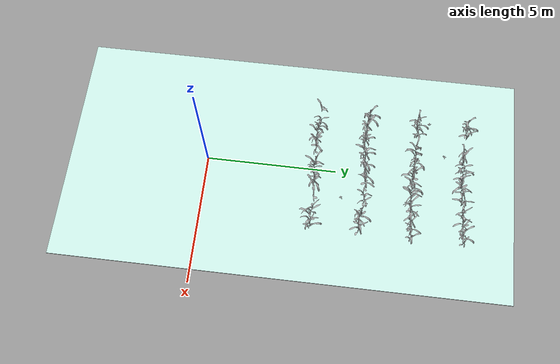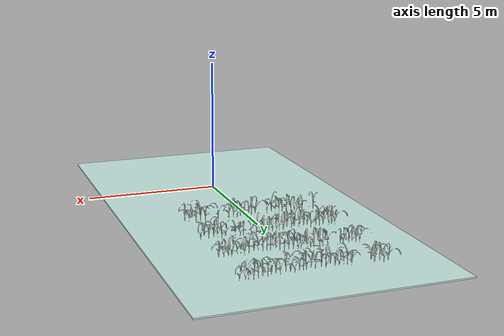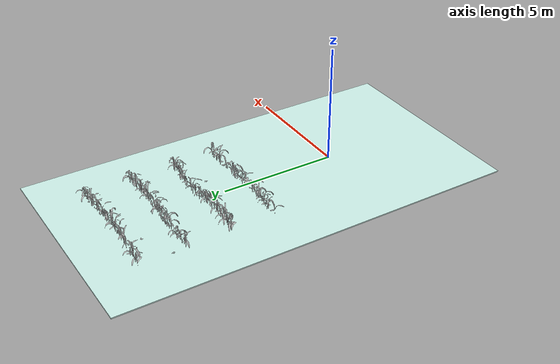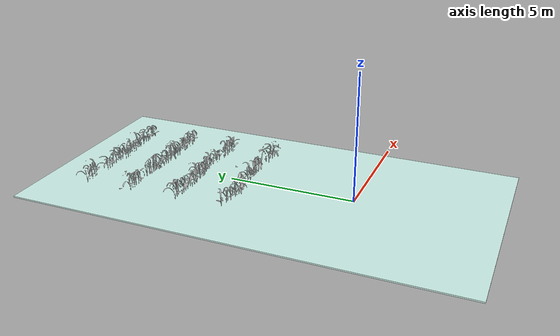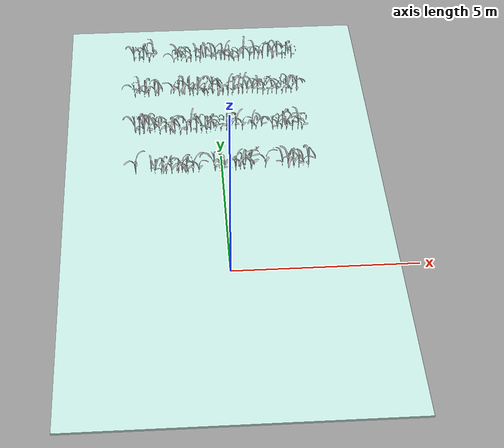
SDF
<sdf version="1.9">
 <world name="feild">
  <model name="ground">
   <static>true</static>
   <pose>0.00 3.25 -0.025 0 0 0</pose>
   <link name="link">
    <collision name="collision">
     <geometry><box><size>9.00 17.30 0.05</size></box></geometry>
     <surface><friction><ode><mu>1.0</mu><mu2>1.0</mu2></ode></friction></surface>
    </collision>
    <visual name="visual">
     <geometry><box><size>9.00 17.30 0.05</size></box></geometry>
     <material>
      <diffuse>0.81 0.95 0.92 1</diffuse>
      <pbr>
       <metal>
        <albedo_map>model://materials/textures/grass_color.jpg</albedo_map>
        <normal_map>model://materials/textures/grass_normal.jpg</normal_map>
       </metal>
      </pbr>
     </material>
    </visual>
   </link>
  </model>
  <model name="row_05">
   <static>true</static>
   <pose>0 4.200 0 0 0 0</pose>
   <link name="link">
    <visual name="p000">
     <pose>-2.484 0.012 0.056 0 0 5.96</pose>
     <geometry>
      <mesh><uri>model://maize_02/meshes/maize_02.dae</uri><scale>0.7661 0.7661 0.7661</scale></mesh>
     </geometry>
    </visual>
    <collision name="p000_c">
     <pose>-2.484 0.012 0.280 0 0 0</pose>
     <geometry><box><size>0.022 0.022 0.449</size></box></geometry>
    </collision>
    <visual name="p003">
     <pose>-2.033 0.031 0.045 0 0 3.90</pose>
     <geometry>
      <mesh><uri>model://maize_02/meshes/maize_02.dae</uri><scale>0.6151 0.6151 0.6151</scale></mesh>
     </geometry>
    </visual>
    <collision name="p003_c">
     <pose>-2.033 0.031 0.225 0 0 0</pose>
     <geometry><box><size>0.018 0.018 0.360</size></box></geometry>
    </collision>
    <visual name="p004">
     <pose>-1.923 0.023 0.042 0 0 1.71</pose>
     <geometry>
      <mesh><uri>model://maize_01/meshes/maize_01.dae</uri><scale>0.5785 0.5785 0.5785</scale></mesh>
     </geometry>
    </visual>
    <collision name="p004_c">
     <pose>-1.923 0.023 0.212 0 0 0</pose>
     <geometry><box><size>0.017 0.017 0.339</size></box></geometry>
    </collision>
    <visual name="p005">
     <pose>-1.738 -0.014 0.046 0 0 1.94</pose>
     <geometry>
      <mesh><uri>model://maize_01/meshes/maize_01.dae</uri><scale>0.6279 0.6279 0.6279</scale></mesh>
     </geometry>
    </visual>
    <collision name="p005_c">
     <pose>-1.738 -0.014 0.230 0 0 0</pose>
     <geometry><box><size>0.018 0.018 0.368</size></box></geometry>
    </collision>
    <visual name="p006">
     <pose>-1.613 -0.032 0.043 0 0 2.94</pose>
     <geometry>
      <mesh><uri>model://maize_02/meshes/maize_02.dae</uri><scale>0.5895 0.5895 0.5895</scale></mesh>
     </geometry>
    </visual>
    <collision name="p006_c">
     <pose>-1.613 -0.032 0.216 0 0 0</pose>
     <geometry><box><size>0.017 0.017 0.345</size></box></geometry>
    </collision>
    <visual name="p007">
     <pose>-1.455 -0.056 0.053 0 0 4.92</pose>
     <geometry>
      <mesh><uri>model://maize_01/meshes/maize_01.dae</uri><scale>0.7267 0.7267 0.7267</scale></mesh>
     </geometry>
    </visual>
    <collision name="p007_c">
     <pose>-1.455 -0.056 0.266 0 0 0</pose>
     <geometry><box><size>0.021 0.021 0.425</size></box></geometry>
    </collision>
    <visual name="p008">
     <pose>-1.273 -0.042 0.046 0 0 6.12</pose>
     <geometry>
      <mesh><uri>model://maize_01/meshes/maize_01.dae</uri><scale>0.6235 0.6235 0.6235</scale></mesh>
     </geometry>
    </visual>
    <collision name="p008_c">
     <pose>-1.273 -0.042 0.228 0 0 0</pose>
     <geometry><box><size>0.018 0.018 0.365</size></box></geometry>
    </collision>
    <visual name="p009">
     <pose>-1.156 -0.062 0.048 0 0 4.69</pose>
     <geometry>
      <mesh><uri>model://maize_02/meshes/maize_02.dae</uri><scale>0.6622 0.6622 0.6622</scale></mesh>
     </geometry>
    </visual>
    <collision name="p009_c">
     <pose>-1.156 -0.062 0.242 0 0 0</pose>
     <geometry><box><size>0.019 0.019 0.388</size></box></geometry>
    </collision>
    <visual name="p010">
     <pose>-1.007 -0.058 0.049 0 0 4.62</pose>
     <geometry>
      <mesh><uri>model://maize_01/meshes/maize_01.dae</uri><scale>0.6758 0.6758 0.6758</scale></mesh>
     </geometry>
    </visual>
    <collision name="p010_c">
     <pose>-1.007 -0.058 0.247 0 0 0</pose>
     <geometry><box><size>0.020 0.020 0.396</size></box></geometry>
    </collision>
    <visual name="p011">
     <pose>-0.848 -0.044 0.060 0 0 2.79</pose>
     <geometry>
      <mesh><uri>model://maize_02/meshes/maize_02.dae</uri><scale>0.8182 0.8182 0.8182</scale></mesh>
     </geometry>
    </visual>
    <collision name="p011_c">
     <pose>-0.848 -0.044 0.299 0 0 0</pose>
     <geometry><box><size>0.024 0.024 0.479</size></box></geometry>
    </collision>
    <visual name="p012">
     <pose>-0.685 -0.061 0.041 0 0 5.07</pose>
     <geometry>
      <mesh><uri>model://maize_02/meshes/maize_02.dae</uri><scale>0.5629 0.5629 0.5629</scale></mesh>
     </geometry>
    </visual>
    <collision name="p012_c">
     <pose>-0.685 -0.061 0.206 0 0 0</pose>
     <geometry><box><size>0.016 0.016 0.330</size></box></geometry>
    </collision>
    <visual name="p015">
     <pose>-0.223 -0.020 0.058 0 0 3.42</pose>
     <geometry>
      <mesh><uri>model://maize_01/meshes/maize_01.dae</uri><scale>0.7902 0.7902 0.7902</scale></mesh>
     </geometry>
    </visual>
    <collision name="p015_c">
     <pose>-0.223 -0.020 0.289 0 0 0</pose>
     <geometry><box><size>0.023 0.023 0.463</size></box></geometry>
    </collision>
    <visual name="p016">
     <pose>-0.080 -0.044 0.060 0 0 0.14</pose>
     <geometry>
      <mesh><uri>model://maize_02/meshes/maize_02.dae</uri><scale>0.8189 0.8189 0.8189</scale></mesh>
     </geometry>
    </visual>
    <collision name="p016_c">
     <pose>-0.080 -0.044 0.300 0 0 0</pose>
     <geometry><box><size>0.024 0.024 0.479</size></box></geometry>
    </collision>
    <visual name="p017">
     <pose>0.035 -0.026 0.043 0 0 3.81</pose>
     <geometry>
      <mesh><uri>model://maize_02/meshes/maize_02.dae</uri><scale>0.5828 0.5828 0.5828</scale></mesh>
     </geometry>
    </visual>
    <collision name="p017_c">
     <pose>0.035 -0.026 0.213 0 0 0</pose>
     <geometry><box><size>0.017 0.017 0.341</size></box></geometry>
    </collision>
    <visual name="p018">
     <pose>0.209 -0.021 0.042 0 0 3.10</pose>
     <geometry>
      <mesh><uri>model://maize_02/meshes/maize_02.dae</uri><scale>0.5695 0.5695 0.5695</scale></mesh>
     </geometry>
    </visual>
    <collision name="p018_c">
     <pose>0.209 -0.021 0.208 0 0 0</pose>
     <geometry><box><size>0.017 0.017 0.333</size></box></geometry>
    </collision>
    <visual name="p019">
     <pose>0.368 0.008 0.051 0 0 6.10</pose>
     <geometry>
      <mesh><uri>model://maize_02/meshes/maize_02.dae</uri><scale>0.6972 0.6972 0.6972</scale></mesh>
     </geometry>
    </visual>
    <collision name="p019_c">
     <pose>0.368 0.008 0.255 0 0 0</pose>
     <geometry><box><size>0.020 0.020 0.408</size></box></geometry>
    </collision>
    <visual name="p020">
     <pose>0.504 0.033 0.051 0 0 0.34</pose>
     <geometry>
      <mesh><uri>model://maize_01/meshes/maize_01.dae</uri><scale>0.7002 0.7002 0.7002</scale></mesh>
     </geometry>
    </visual>
    <collision name="p020_c">
     <pose>0.504 0.033 0.256 0 0 0</pose>
     <geometry><box><size>0.020 0.020 0.410</size></box></geometry>
    </collision>
    <visual name="p021">
     <pose>0.626 0.015 0.060 0 0 1.27</pose>
     <geometry>
      <mesh><uri>model://maize_01/meshes/maize_01.dae</uri><scale>0.8197 0.8197 0.8197</scale></mesh>
     </geometry>
    </visual>
    <collision name="p021_c">
     <pose>0.626 0.015 0.300 0 0 0</pose>
     <geometry><box><size>0.024 0.024 0.480</size></box></geometry>
    </collision>
    <visual name="p022">
     <pose>0.805 0.010 0.057 0 0 4.59</pose>
     <geometry>
      <mesh><uri>model://maize_01/meshes/maize_01.dae</uri><scale>0.7790 0.7790 0.7790</scale></mesh>
     </geometry>
    </visual>
    <collision name="p022_c">
     <pose>0.805 0.010 0.285 0 0 0</pose>
     <geometry><box><size>0.023 0.023 0.456</size></box></geometry>
    </collision>
    <visual name="p025">
     <pose>1.222 0.055 0.053 0 0 5.39</pose>
     <geometry>
      <mesh><uri>model://maize_02/meshes/maize_02.dae</uri><scale>0.7183 0.7183 0.7183</scale></mesh>
     </geometry>
    </visual>
    <collision name="p025_c">
     <pose>1.222 0.055 0.263 0 0 0</pose>
     <geometry><box><size>0.021 0.021 0.421</size></box></geometry>
    </collision>
    <visual name="p028">
     <pose>1.701 0.054 0.050 0 0 1.36</pose>
     <geometry>
      <mesh><uri>model://maize_02/meshes/maize_02.dae</uri><scale>0.6882 0.6882 0.6882</scale></mesh>
     </geometry>
    </visual>
    <collision name="p028_c">
     <pose>1.701 0.054 0.252 0 0 0</pose>
     <geometry><box><size>0.020 0.020 0.403</size></box></geometry>
    </collision>
    <visual name="p029">
     <pose>1.871 0.007 0.060 0 0 4.33</pose>
     <geometry>
      <mesh><uri>model://maize_02/meshes/maize_02.dae</uri><scale>0.8161 0.8161 0.8161</scale></mesh>
     </geometry>
    </visual>
    <collision name="p029_c">
     <pose>1.871 0.007 0.299 0 0 0</pose>
     <geometry><box><size>0.024 0.024 0.478</size></box></geometry>
    </collision>
    <visual name="p030">
     <pose>2.024 0.023 0.057 0 0 5.10</pose>
     <geometry>
      <mesh><uri>model://maize_01/meshes/maize_01.dae</uri><scale>0.7765 0.7765 0.7765</scale></mesh>
     </geometry>
    </visual>
    <collision name="p030_c">
     <pose>2.024 0.023 0.284 0 0 0</pose>
     <geometry><box><size>0.023 0.023 0.455</size></box></geometry>
    </collision>
    <visual name="p031">
     <pose>2.177 -0.016 0.050 0 0 3.85</pose>
     <geometry>
      <mesh><uri>model://maize_02/meshes/maize_02.dae</uri><scale>0.6829 0.6829 0.6829</scale></mesh>
     </geometry>
    </visual>
    <collision name="p031_c">
     <pose>2.177 -0.016 0.250 0 0 0</pose>
     <geometry><box><size>0.020 0.020 0.400</size></box></geometry>
    </collision>
    <visual name="p032">
     <pose>2.301 0.029 0.048 0 0 1.72</pose>
     <geometry>
      <mesh><uri>model://maize_02/meshes/maize_02.dae</uri><scale>0.6626 0.6626 0.6626</scale></mesh>
     </geometry>
    </visual>
    <collision name="p032_c">
     <pose>2.301 0.029 0.242 0 0 0</pose>
     <geometry><box><size>0.019 0.019 0.388</size></box></geometry>
    </collision>
    <visual name="p033">
     <pose>2.457 0.011 0.058 0 0 2.56</pose>
     <geometry>
      <mesh><uri>model://maize_01/meshes/maize_01.dae</uri><scale>0.7975 0.7975 0.7975</scale></mesh>
     </geometry>
    </visual>
    <collision name="p033_c">
     <pose>2.457 0.011 0.292 0 0 0</pose>
     <geometry><box><size>0.023 0.023 0.467</size></box></geometry>
    </collision>
   </link>
  </model>
  <model name="row_06">
   <static>true</static>
   <pose>0 6.100 0 0 0 0</pose>
   <link name="link">
    <visual name="p000">
     <pose>-2.481 0.018 0.054 0 0 3.24</pose>
     <geometry>
      <mesh><uri>model://maize_01/meshes/maize_01.dae</uri><scale>0.7440 0.7440 0.7440</scale></mesh>
     </geometry>
    </visual>
    <collision name="p000_c">
     <pose>-2.481 0.018 0.272 0 0 0</pose>
     <geometry><box><size>0.022 0.022 0.436</size></box></geometry>
    </collision>
    <visual name="p001">
     <pose>-2.354 -0.004 0.056 0 0 2.18</pose>
     <geometry>
      <mesh><uri>model://maize_01/meshes/maize_01.dae</uri><scale>0.7670 0.7670 0.7670</scale></mesh>
     </geometry>
    </visual>
    <collision name="p001_c">
     <pose>-2.354 -0.004 0.281 0 0 0</pose>
     <geometry><box><size>0.022 0.022 0.449</size></box></geometry>
    </collision>
    <visual name="p002">
     <pose>-2.227 0.010 0.059 0 0 1.65</pose>
     <geometry>
      <mesh><uri>model://maize_01/meshes/maize_01.dae</uri><scale>0.8000 0.8000 0.8000</scale></mesh>
     </geometry>
    </visual>
    <collision name="p002_c">
     <pose>-2.227 0.010 0.293 0 0 0</pose>
     <geometry><box><size>0.023 0.023 0.468</size></box></geometry>
    </collision>
    <visual name="p003">
     <pose>-2.052 -0.035 0.057 0 0 3.18</pose>
     <geometry>
      <mesh><uri>model://maize_01/meshes/maize_01.dae</uri><scale>0.7826 0.7826 0.7826</scale></mesh>
     </geometry>
    </visual>
    <collision name="p003_c">
     <pose>-2.052 -0.035 0.286 0 0 0</pose>
     <geometry><box><size>0.023 0.023 0.458</size></box></geometry>
    </collision>
    <visual name="p004">
     <pose>-1.908 -0.029 0.060 0 0 4.72</pose>
     <geometry>
      <mesh><uri>model://maize_02/meshes/maize_02.dae</uri><scale>0.8132 0.8132 0.8132</scale></mesh>
     </geometry>
    </visual>
    <collision name="p004_c">
     <pose>-1.908 -0.029 0.298 0 0 0</pose>
     <geometry><box><size>0.024 0.024 0.476</size></box></geometry>
    </collision>
    <visual name="p005">
     <pose>-1.763 -0.024 0.050 0 0 4.42</pose>
     <geometry>
      <mesh><uri>model://maize_01/meshes/maize_01.dae</uri><scale>0.6798 0.6798 0.6798</scale></mesh>
     </geometry>
    </visual>
    <collision name="p005_c">
     <pose>-1.763 -0.024 0.249 0 0 0</pose>
     <geometry><box><size>0.020 0.020 0.398</size></box></geometry>
    </collision>
    <visual name="p006">
     <pose>-1.583 -0.033 0.042 0 0 6.17</pose>
     <geometry>
      <mesh><uri>model://maize_01/meshes/maize_01.dae</uri><scale>0.5717 0.5717 0.5717</scale></mesh>
     </geometry>
    </visual>
    <collision name="p006_c">
     <pose>-1.583 -0.033 0.209 0 0 0</pose>
     <geometry><box><size>0.017 0.017 0.335</size></box></geometry>
    </collision>
    <visual name="p007">
     <pose>-1.458 -0.073 0.053 0 0 5.63</pose>
     <geometry>
      <mesh><uri>model://maize_02/meshes/maize_02.dae</uri><scale>0.7231 0.7231 0.7231</scale></mesh>
     </geometry>
    </visual>
    <collision name="p007_c">
     <pose>-1.458 -0.073 0.265 0 0 0</pose>
     <geometry><box><size>0.021 0.021 0.423</size></box></geometry>
    </collision>
    <visual name="p008">
     <pose>-1.317 -0.066 0.048 0 0 2.65</pose>
     <geometry>
      <mesh><uri>model://maize_01/meshes/maize_01.dae</uri><scale>0.6567 0.6567 0.6567</scale></mesh>
     </geometry>
    </visual>
    <collision name="p008_c">
     <pose>-1.317 -0.066 0.240 0 0 0</pose>
     <geometry><box><size>0.019 0.019 0.384</size></box></geometry>
    </collision>
    <visual name="p009">
     <pose>-1.171 -0.085 0.054 0 0 4.12</pose>
     <geometry>
      <mesh><uri>model://maize_01/meshes/maize_01.dae</uri><scale>0.7328 0.7328 0.7328</scale></mesh>
     </geometry>
    </visual>
    <collision name="p009_c">
     <pose>-1.171 -0.085 0.268 0 0 0</pose>
     <geometry><box><size>0.021 0.021 0.429</size></box></geometry>
    </collision>
    <visual name="p010">
     <pose>-0.970 -0.088 0.058 0 0 2.50</pose>
     <geometry>
      <mesh><uri>model://maize_02/meshes/maize_02.dae</uri><scale>0.7942 0.7942 0.7942</scale></mesh>
     </geometry>
    </visual>
    <collision name="p010_c">
     <pose>-0.970 -0.088 0.291 0 0 0</pose>
     <geometry><box><size>0.023 0.023 0.465</size></box></geometry>
    </collision>
    <visual name="p011">
     <pose>-0.849 -0.044 0.059 0 0 0.32</pose>
     <geometry>
      <mesh><uri>model://maize_02/meshes/maize_02.dae</uri><scale>0.8077 0.8077 0.8077</scale></mesh>
     </geometry>
    </visual>
    <collision name="p011_c">
     <pose>-0.849 -0.044 0.296 0 0 0</pose>
     <geometry><box><size>0.024 0.024 0.473</size></box></geometry>
    </collision>
    <visual name="p012">
     <pose>-0.679 -0.066 0.054 0 0 2.45</pose>
     <geometry>
      <mesh><uri>model://maize_01/meshes/maize_01.dae</uri><scale>0.7365 0.7365 0.7365</scale></mesh>
     </geometry>
    </visual>
    <collision name="p012_c">
     <pose>-0.679 -0.066 0.270 0 0 0</pose>
     <geometry><box><size>0.022 0.022 0.431</size></box></geometry>
    </collision>
    <visual name="p013">
     <pose>-0.545 -0.010 0.055 0 0 4.04</pose>
     <geometry>
      <mesh><uri>model://maize_01/meshes/maize_01.dae</uri><scale>0.7465 0.7465 0.7465</scale></mesh>
     </geometry>
    </visual>
    <collision name="p013_c">
     <pose>-0.545 -0.010 0.273 0 0 0</pose>
     <geometry><box><size>0.022 0.022 0.437</size></box></geometry>
    </collision>
    <visual name="p014">
     <pose>-0.379 -0.043 0.053 0 0 1.35</pose>
     <geometry>
      <mesh><uri>model://maize_01/meshes/maize_01.dae</uri><scale>0.7187 0.7187 0.7187</scale></mesh>
     </geometry>
    </visual>
    <collision name="p014_c">
     <pose>-0.379 -0.043 0.263 0 0 0</pose>
     <geometry><box><size>0.021 0.021 0.421</size></box></geometry>
    </collision>
    <visual name="p015">
     <pose>-0.267 -0.015 0.050 0 0 2.13</pose>
     <geometry>
      <mesh><uri>model://maize_01/meshes/maize_01.dae</uri><scale>0.6831 0.6831 0.6831</scale></mesh>
     </geometry>
    </visual>
    <collision name="p015_c">
     <pose>-0.267 -0.015 0.250 0 0 0</pose>
     <geometry><box><size>0.020 0.020 0.400</size></box></geometry>
    </collision>
    <visual name="p016">
     <pose>-0.122 0.019 0.041 0 0 5.10</pose>
     <geometry>
      <mesh><uri>model://maize_02/meshes/maize_02.dae</uri><scale>0.5547 0.5547 0.5547</scale></mesh>
     </geometry>
    </visual>
    <collision name="p016_c">
     <pose>-0.122 0.019 0.203 0 0 0</pose>
     <geometry><box><size>0.016 0.016 0.325</size></box></geometry>
    </collision>
    <visual name="p017">
     <pose>0.031 0.042 0.049 0 0 4.15</pose>
     <geometry>
      <mesh><uri>model://maize_01/meshes/maize_01.dae</uri><scale>0.6627 0.6627 0.6627</scale></mesh>
     </geometry>
    </visual>
    <collision name="p017_c">
     <pose>0.031 0.042 0.243 0 0 0</pose>
     <geometry><box><size>0.019 0.019 0.388</size></box></geometry>
    </collision>
    <visual name="p018">
     <pose>0.216 0.061 0.052 0 0 1.62</pose>
     <geometry>
      <mesh><uri>model://maize_01/meshes/maize_01.dae</uri><scale>0.7080 0.7080 0.7080</scale></mesh>
     </geometry>
    </visual>
    <collision name="p018_c">
     <pose>0.216 0.061 0.259 0 0 0</pose>
     <geometry><box><size>0.021 0.021 0.415</size></box></geometry>
    </collision>
    <visual name="p019">
     <pose>0.331 0.048 0.041 0 0 0.99</pose>
     <geometry>
      <mesh><uri>model://maize_01/meshes/maize_01.dae</uri><scale>0.5543 0.5543 0.5543</scale></mesh>
     </geometry>
    </visual>
    <collision name="p019_c">
     <pose>0.331 0.048 0.203 0 0 0</pose>
     <geometry><box><size>0.016 0.016 0.325</size></box></geometry>
    </collision>
    <visual name="p020">
     <pose>0.487 0.091 0.056 0 0 3.15</pose>
     <geometry>
      <mesh><uri>model://maize_02/meshes/maize_02.dae</uri><scale>0.7709 0.7709 0.7709</scale></mesh>
     </geometry>
    </visual>
    <collision name="p020_c">
     <pose>0.487 0.091 0.282 0 0 0</pose>
     <geometry><box><size>0.023 0.023 0.451</size></box></geometry>
    </collision>
    <visual name="p021">
     <pose>0.674 0.056 0.042 0 0 5.09</pose>
     <geometry>
      <mesh><uri>model://maize_02/meshes/maize_02.dae</uri><scale>0.5768 0.5768 0.5768</scale></mesh>
     </geometry>
    </visual>
    <collision name="p021_c">
     <pose>0.674 0.056 0.211 0 0 0</pose>
     <geometry><box><size>0.017 0.017 0.338</size></box></geometry>
    </collision>
    <visual name="p023">
     <pose>0.961 0.063 0.046 0 0 0.17</pose>
     <geometry>
      <mesh><uri>model://maize_02/meshes/maize_02.dae</uri><scale>0.6318 0.6318 0.6318</scale></mesh>
     </geometry>
    </visual>
    <collision name="p023_c">
     <pose>0.961 0.063 0.231 0 0 0</pose>
     <geometry><box><size>0.018 0.018 0.370</size></box></geometry>
    </collision>
    <visual name="p024">
     <pose>1.085 0.064 0.043 0 0 1.07</pose>
     <geometry>
      <mesh><uri>model://maize_01/meshes/maize_01.dae</uri><scale>0.5897 0.5897 0.5897</scale></mesh>
     </geometry>
    </visual>
    <collision name="p024_c">
     <pose>1.085 0.064 0.216 0 0 0</pose>
     <geometry><box><size>0.017 0.017 0.345</size></box></geometry>
    </collision>
    <visual name="p025">
     <pose>1.248 0.060 0.046 0 0 4.33</pose>
     <geometry>
      <mesh><uri>model://maize_02/meshes/maize_02.dae</uri><scale>0.6249 0.6249 0.6249</scale></mesh>
     </geometry>
    </visual>
    <collision name="p025_c">
     <pose>1.248 0.060 0.229 0 0 0</pose>
     <geometry><box><size>0.018 0.018 0.366</size></box></geometry>
    </collision>
    <visual name="p027">
     <pose>1.575 0.007 0.042 0 0 3.30</pose>
     <geometry>
      <mesh><uri>model://maize_01/meshes/maize_01.dae</uri><scale>0.5801 0.5801 0.5801</scale></mesh>
     </geometry>
    </visual>
    <collision name="p027_c">
     <pose>1.575 0.007 0.212 0 0 0</pose>
     <geometry><box><size>0.017 0.017 0.340</size></box></geometry>
    </collision>
    <visual name="p028">
     <pose>1.719 0.021 0.048 0 0 0.30</pose>
     <geometry>
      <mesh><uri>model://maize_01/meshes/maize_01.dae</uri><scale>0.6528 0.6528 0.6528</scale></mesh>
     </geometry>
    </visual>
    <collision name="p028_c">
     <pose>1.719 0.021 0.239 0 0 0</pose>
     <geometry><box><size>0.019 0.019 0.382</size></box></geometry>
    </collision>
    <visual name="p029">
     <pose>1.848 -0.037 0.058 0 0 1.91</pose>
     <geometry>
      <mesh><uri>model://maize_01/meshes/maize_01.dae</uri><scale>0.7863 0.7863 0.7863</scale></mesh>
     </geometry>
    </visual>
    <collision name="p029_c">
     <pose>1.848 -0.037 0.288 0 0 0</pose>
     <geometry><box><size>0.023 0.023 0.460</size></box></geometry>
    </collision>
    <visual name="p030">
     <pose>1.981 -0.048 0.053 0 0 2.77</pose>
     <geometry>
      <mesh><uri>model://maize_02/meshes/maize_02.dae</uri><scale>0.7260 0.7260 0.7260</scale></mesh>
     </geometry>
    </visual>
    <collision name="p030_c">
     <pose>1.981 -0.048 0.266 0 0 0</pose>
     <geometry><box><size>0.021 0.021 0.425</size></box></geometry>
    </collision>
    <visual name="p031">
     <pose>2.151 -0.061 0.058 0 0 2.46</pose>
     <geometry>
      <mesh><uri>model://maize_02/meshes/maize_02.dae</uri><scale>0.7909 0.7909 0.7909</scale></mesh>
     </geometry>
    </visual>
    <collision name="p031_c">
     <pose>2.151 -0.061 0.289 0 0 0</pose>
     <geometry><box><size>0.023 0.023 0.463</size></box></geometry>
    </collision>
    <visual name="p032">
     <pose>2.318 -0.039 0.055 0 0 1.06</pose>
     <geometry>
      <mesh><uri>model://maize_02/meshes/maize_02.dae</uri><scale>0.7482 0.7482 0.7482</scale></mesh>
     </geometry>
    </visual>
    <collision name="p032_c">
     <pose>2.318 -0.039 0.274 0 0 0</pose>
     <geometry><box><size>0.022 0.022 0.438</size></box></geometry>
    </collision>
    <visual name="p033">
     <pose>2.429 -0.048 0.051 0 0 3.87</pose>
     <geometry>
      <mesh><uri>model://maize_01/meshes/maize_01.dae</uri><scale>0.6954 0.6954 0.6954</scale></mesh>
     </geometry>
    </visual>
    <collision name="p033_c">
     <pose>2.429 -0.048 0.254 0 0 0</pose>
     <geometry><box><size>0.020 0.020 0.407</size></box></geometry>
    </collision>
   </link>
  </model>
  <model name="row_07">
   <static>true</static>
   <pose>0 8.000 0 0 0 0</pose>
   <link name="link">
    <visual name="p000">
     <pose>-2.492 0.043 0.047 0 0 3.80</pose>
     <geometry>
      <mesh><uri>model://maize_01/meshes/maize_01.dae</uri><scale>0.6453 0.6453 0.6453</scale></mesh>
     </geometry>
    </visual>
    <collision name="p000_c">
     <pose>-2.492 0.043 0.236 0 0 0</pose>
     <geometry><box><size>0.019 0.019 0.378</size></box></geometry>
    </collision>
    <visual name="p001">
     <pose>-2.353 0.022 0.051 0 0 0.91</pose>
     <geometry>
      <mesh><uri>model://maize_02/meshes/maize_02.dae</uri><scale>0.7023 0.7023 0.7023</scale></mesh>
     </geometry>
    </visual>
    <collision name="p001_c">
     <pose>-2.353 0.022 0.257 0 0 0</pose>
     <geometry><box><size>0.021 0.021 0.411</size></box></geometry>
    </collision>
    <visual name="p002">
     <pose>-2.186 0.046 0.052 0 0 2.02</pose>
     <geometry>
      <mesh><uri>model://maize_01/meshes/maize_01.dae</uri><scale>0.7041 0.7041 0.7041</scale></mesh>
     </geometry>
    </visual>
    <collision name="p002_c">
     <pose>-2.186 0.046 0.258 0 0 0</pose>
     <geometry><box><size>0.021 0.021 0.412</size></box></geometry>
    </collision>
    <visual name="p003">
     <pose>-2.077 0.048 0.047 0 0 5.76</pose>
     <geometry>
      <mesh><uri>model://maize_02/meshes/maize_02.dae</uri><scale>0.6461 0.6461 0.6461</scale></mesh>
     </geometry>
    </visual>
    <collision name="p003_c">
     <pose>-2.077 0.048 0.236 0 0 0</pose>
     <geometry><box><size>0.019 0.019 0.378</size></box></geometry>
    </collision>
    <visual name="p004">
     <pose>-1.871 0.071 0.048 0 0 4.72</pose>
     <geometry>
      <mesh><uri>model://maize_01/meshes/maize_01.dae</uri><scale>0.6614 0.6614 0.6614</scale></mesh>
     </geometry>
    </visual>
    <collision name="p004_c">
     <pose>-1.871 0.071 0.242 0 0 0</pose>
     <geometry><box><size>0.019 0.019 0.387</size></box></geometry>
    </collision>
    <visual name="p005">
     <pose>-1.769 0.036 0.045 0 0 2.44</pose>
     <geometry>
      <mesh><uri>model://maize_01/meshes/maize_01.dae</uri><scale>0.6128 0.6128 0.6128</scale></mesh>
     </geometry>
    </visual>
    <collision name="p005_c">
     <pose>-1.769 0.036 0.224 0 0 0</pose>
     <geometry><box><size>0.018 0.018 0.359</size></box></geometry>
    </collision>
    <visual name="p008">
     <pose>-1.314 0.038 0.049 0 0 5.15</pose>
     <geometry>
      <mesh><uri>model://maize_02/meshes/maize_02.dae</uri><scale>0.6637 0.6637 0.6637</scale></mesh>
     </geometry>
    </visual>
    <collision name="p008_c">
     <pose>-1.314 0.038 0.243 0 0 0</pose>
     <geometry><box><size>0.019 0.019 0.389</size></box></geometry>
    </collision>
    <visual name="p009">
     <pose>-1.136 0.033 0.048 0 0 4.75</pose>
     <geometry>
      <mesh><uri>model://maize_01/meshes/maize_01.dae</uri><scale>0.6517 0.6517 0.6517</scale></mesh>
     </geometry>
    </visual>
    <collision name="p009_c">
     <pose>-1.136 0.033 0.238 0 0 0</pose>
     <geometry><box><size>0.019 0.019 0.382</size></box></geometry>
    </collision>
    <visual name="p010">
     <pose>-1.023 0.064 0.056 0 0 5.57</pose>
     <geometry>
      <mesh><uri>model://maize_01/meshes/maize_01.dae</uri><scale>0.7598 0.7598 0.7598</scale></mesh>
     </geometry>
    </visual>
    <collision name="p010_c">
     <pose>-1.023 0.064 0.278 0 0 0</pose>
     <geometry><box><size>0.022 0.022 0.445</size></box></geometry>
    </collision>
    <visual name="p011">
     <pose>-0.820 0.034 0.057 0 0 4.98</pose>
     <geometry>
      <mesh><uri>model://maize_01/meshes/maize_01.dae</uri><scale>0.7818 0.7818 0.7818</scale></mesh>
     </geometry>
    </visual>
    <collision name="p011_c">
     <pose>-0.820 0.034 0.286 0 0 0</pose>
     <geometry><box><size>0.023 0.023 0.458</size></box></geometry>
    </collision>
    <visual name="p012">
     <pose>-0.713 0.008 0.042 0 0 0.24</pose>
     <geometry>
      <mesh><uri>model://maize_01/meshes/maize_01.dae</uri><scale>0.5755 0.5755 0.5755</scale></mesh>
     </geometry>
    </visual>
    <collision name="p012_c">
     <pose>-0.713 0.008 0.211 0 0 0</pose>
     <geometry><box><size>0.017 0.017 0.337</size></box></geometry>
    </collision>
    <visual name="p013">
     <pose>-0.578 0.035 0.056 0 0 1.60</pose>
     <geometry>
      <mesh><uri>model://maize_01/meshes/maize_01.dae</uri><scale>0.7638 0.7638 0.7638</scale></mesh>
     </geometry>
    </visual>
    <collision name="p013_c">
     <pose>-0.578 0.035 0.280 0 0 0</pose>
     <geometry><box><size>0.022 0.022 0.447</size></box></geometry>
    </collision>
    <visual name="p014">
     <pose>-0.375 -0.015 0.041 0 0 0.16</pose>
     <geometry>
      <mesh><uri>model://maize_01/meshes/maize_01.dae</uri><scale>0.5541 0.5541 0.5541</scale></mesh>
     </geometry>
    </visual>
    <collision name="p014_c">
     <pose>-0.375 -0.015 0.203 0 0 0</pose>
     <geometry><box><size>0.016 0.016 0.324</size></box></geometry>
    </collision>
    <visual name="p015">
     <pose>-0.266 -0.017 0.046 0 0 0.79</pose>
     <geometry>
      <mesh><uri>model://maize_01/meshes/maize_01.dae</uri><scale>0.6301 0.6301 0.6301</scale></mesh>
     </geometry>
    </visual>
    <collision name="p015_c">
     <pose>-0.266 -0.017 0.231 0 0 0</pose>
     <geometry><box><size>0.018 0.018 0.369</size></box></geometry>
    </collision>
    <visual name="p016">
     <pose>-0.117 -0.020 0.057 0 0 2.96</pose>
     <geometry>
      <mesh><uri>model://maize_01/meshes/maize_01.dae</uri><scale>0.7826 0.7826 0.7826</scale></mesh>
     </geometry>
    </visual>
    <collision name="p016_c">
     <pose>-0.117 -0.020 0.286 0 0 0</pose>
     <geometry><box><size>0.023 0.023 0.458</size></box></geometry>
    </collision>
    <visual name="p017">
     <pose>0.033 -0.044 0.054 0 0 5.53</pose>
     <geometry>
      <mesh><uri>model://maize_01/meshes/maize_01.dae</uri><scale>0.7402 0.7402 0.7402</scale></mesh>
     </geometry>
    </visual>
    <collision name="p017_c">
     <pose>0.033 -0.044 0.271 0 0 0</pose>
     <geometry><box><size>0.022 0.022 0.433</size></box></geometry>
    </collision>
    <visual name="p018">
     <pose>0.193 -0.038 0.051 0 0 2.38</pose>
     <geometry>
      <mesh><uri>model://maize_02/meshes/maize_02.dae</uri><scale>0.6972 0.6972 0.6972</scale></mesh>
     </geometry>
    </visual>
    <collision name="p018_c">
     <pose>0.193 -0.038 0.255 0 0 0</pose>
     <geometry><box><size>0.020 0.020 0.408</size></box></geometry>
    </collision>
    <visual name="p019">
     <pose>0.343 -0.065 0.055 0 0 0.03</pose>
     <geometry>
      <mesh><uri>model://maize_02/meshes/maize_02.dae</uri><scale>0.7455 0.7455 0.7455</scale></mesh>
     </geometry>
    </visual>
    <collision name="p019_c">
     <pose>0.343 -0.065 0.273 0 0 0</pose>
     <geometry><box><size>0.022 0.022 0.436</size></box></geometry>
    </collision>
    <visual name="p020">
     <pose>0.489 -0.028 0.057 0 0 1.77</pose>
     <geometry>
      <mesh><uri>model://maize_01/meshes/maize_01.dae</uri><scale>0.7741 0.7741 0.7741</scale></mesh>
     </geometry>
    </visual>
    <collision name="p020_c">
     <pose>0.489 -0.028 0.283 0 0 0</pose>
     <geometry><box><size>0.023 0.023 0.453</size></box></geometry>
    </collision>
    <visual name="p021">
     <pose>0.667 -0.065 0.054 0 0 0.31</pose>
     <geometry>
      <mesh><uri>model://maize_02/meshes/maize_02.dae</uri><scale>0.7382 0.7382 0.7382</scale></mesh>
     </geometry>
    </visual>
    <collision name="p021_c">
     <pose>0.667 -0.065 0.270 0 0 0</pose>
     <geometry><box><size>0.022 0.022 0.432</size></box></geometry>
    </collision>
    <visual name="p022">
     <pose>0.789 -0.063 0.056 0 0 0.14</pose>
     <geometry>
      <mesh><uri>model://maize_02/meshes/maize_02.dae</uri><scale>0.7671 0.7671 0.7671</scale></mesh>
     </geometry>
    </visual>
    <collision name="p022_c">
     <pose>0.789 -0.063 0.281 0 0 0</pose>
     <geometry><box><size>0.022 0.022 0.449</size></box></geometry>
    </collision>
    <visual name="p023">
     <pose>0.927 -0.068 0.058 0 0 4.64</pose>
     <geometry>
      <mesh><uri>model://maize_02/meshes/maize_02.dae</uri><scale>0.7900 0.7900 0.7900</scale></mesh>
     </geometry>
    </visual>
    <collision name="p023_c">
     <pose>0.927 -0.068 0.289 0 0 0</pose>
     <geometry><box><size>0.023 0.023 0.463</size></box></geometry>
    </collision>
    <visual name="p024">
     <pose>1.097 -0.061 0.056 0 0 4.51</pose>
     <geometry>
      <mesh><uri>model://maize_02/meshes/maize_02.dae</uri><scale>0.7700 0.7700 0.7700</scale></mesh>
     </geometry>
    </visual>
    <collision name="p024_c">
     <pose>1.097 -0.061 0.282 0 0 0</pose>
     <geometry><box><size>0.023 0.023 0.451</size></box></geometry>
    </collision>
    <visual name="p025">
     <pose>1.250 -0.043 0.052 0 0 3.85</pose>
     <geometry>
      <mesh><uri>model://maize_02/meshes/maize_02.dae</uri><scale>0.7090 0.7090 0.7090</scale></mesh>
     </geometry>
    </visual>
    <collision name="p025_c">
     <pose>1.250 -0.043 0.259 0 0 0</pose>
     <geometry><box><size>0.021 0.021 0.415</size></box></geometry>
    </collision>
    <visual name="p026">
     <pose>1.418 -0.043 0.054 0 0 3.02</pose>
     <geometry>
      <mesh><uri>model://maize_02/meshes/maize_02.dae</uri><scale>0.7330 0.7330 0.7330</scale></mesh>
     </geometry>
    </visual>
    <collision name="p026_c">
     <pose>1.418 -0.043 0.268 0 0 0</pose>
     <geometry><box><size>0.021 0.021 0.429</size></box></geometry>
    </collision>
    <visual name="p027">
     <pose>1.556 -0.050 0.053 0 0 4.06</pose>
     <geometry>
      <mesh><uri>model://maize_01/meshes/maize_01.dae</uri><scale>0.7239 0.7239 0.7239</scale></mesh>
     </geometry>
    </visual>
    <collision name="p027_c">
     <pose>1.556 -0.050 0.265 0 0 0</pose>
     <geometry><box><size>0.021 0.021 0.424</size></box></geometry>
    </collision>
    <visual name="p028">
     <pose>1.688 -0.050 0.046 0 0 1.26</pose>
     <geometry>
      <mesh><uri>model://maize_02/meshes/maize_02.dae</uri><scale>0.6306 0.6306 0.6306</scale></mesh>
     </geometry>
    </visual>
    <collision name="p028_c">
     <pose>1.688 -0.050 0.231 0 0 0</pose>
     <geometry><box><size>0.018 0.018 0.369</size></box></geometry>
    </collision>
    <visual name="p029">
     <pose>1.834 -0.007 0.044 0 0 4.64</pose>
     <geometry>
      <mesh><uri>model://maize_02/meshes/maize_02.dae</uri><scale>0.5959 0.5959 0.5959</scale></mesh>
     </geometry>
    </visual>
    <collision name="p029_c">
     <pose>1.834 -0.007 0.218 0 0 0</pose>
     <geometry><box><size>0.017 0.017 0.349</size></box></geometry>
    </collision>
    <visual name="p030">
     <pose>1.995 -0.037 0.059 0 0 4.04</pose>
     <geometry>
      <mesh><uri>model://maize_01/meshes/maize_01.dae</uri><scale>0.8084 0.8084 0.8084</scale></mesh>
     </geometry>
    </visual>
    <collision name="p030_c">
     <pose>1.995 -0.037 0.296 0 0 0</pose>
     <geometry><box><size>0.024 0.024 0.473</size></box></geometry>
    </collision>
    <visual name="p031">
     <pose>2.130 0.006 0.050 0 0 3.30</pose>
     <geometry>
      <mesh><uri>model://maize_02/meshes/maize_02.dae</uri><scale>0.6811 0.6811 0.6811</scale></mesh>
     </geometry>
    </visual>
    <collision name="p031_c">
     <pose>2.130 0.006 0.249 0 0 0</pose>
     <geometry><box><size>0.020 0.020 0.399</size></box></geometry>
    </collision>
    <visual name="p032">
     <pose>2.289 -0.033 0.052 0 0 0.94</pose>
     <geometry>
      <mesh><uri>model://maize_01/meshes/maize_01.dae</uri><scale>0.7152 0.7152 0.7152</scale></mesh>
     </geometry>
    </visual>
    <collision name="p032_c">
     <pose>2.289 -0.033 0.262 0 0 0</pose>
     <geometry><box><size>0.021 0.021 0.419</size></box></geometry>
    </collision>
    <visual name="p033">
     <pose>2.462 0.009 0.050 0 0 2.82</pose>
     <geometry>
      <mesh><uri>model://maize_01/meshes/maize_01.dae</uri><scale>0.6829 0.6829 0.6829</scale></mesh>
     </geometry>
    </visual>
    <collision name="p033_c">
     <pose>2.462 0.009 0.250 0 0 0</pose>
     <geometry><box><size>0.020 0.020 0.400</size></box></geometry>
    </collision>
   </link>
  </model>
  <model name="row_08">
   <static>true</static>
   <pose>0 9.900 0 0 0 0</pose>
   <link name="link">
    <visual name="p000">
     <pose>-2.505 0.084 0.049 0 0 3.05</pose>
     <geometry>
      <mesh><uri>model://maize_01/meshes/maize_01.dae</uri><scale>0.6742 0.6742 0.6742</scale></mesh>
     </geometry>
    </visual>
    <collision name="p000_c">
     <pose>-2.505 0.084 0.247 0 0 0</pose>
     <geometry><box><size>0.020 0.020 0.395</size></box></geometry>
    </collision>
    <visual name="p001">
     <pose>-2.347 0.095 0.043 0 0 3.09</pose>
     <geometry>
      <mesh><uri>model://maize_02/meshes/maize_02.dae</uri><scale>0.5883 0.5883 0.5883</scale></mesh>
     </geometry>
    </visual>
    <collision name="p001_c">
     <pose>-2.347 0.095 0.215 0 0 0</pose>
     <geometry><box><size>0.017 0.017 0.344</size></box></geometry>
    </collision>
    <visual name="p002">
     <pose>-2.214 0.054 0.053 0 0 2.23</pose>
     <geometry>
      <mesh><uri>model://maize_01/meshes/maize_01.dae</uri><scale>0.7271 0.7271 0.7271</scale></mesh>
     </geometry>
    </visual>
    <collision name="p002_c">
     <pose>-2.214 0.054 0.266 0 0 0</pose>
     <geometry><box><size>0.021 0.021 0.426</size></box></geometry>
    </collision>
    <visual name="p003">
     <pose>-2.045 0.054 0.059 0 0 4.06</pose>
     <geometry>
      <mesh><uri>model://maize_01/meshes/maize_01.dae</uri><scale>0.8065 0.8065 0.8065</scale></mesh>
     </geometry>
    </visual>
    <collision name="p003_c">
     <pose>-2.045 0.054 0.295 0 0 0</pose>
     <geometry><box><size>0.024 0.024 0.472</size></box></geometry>
    </collision>
    <visual name="p004">
     <pose>-1.904 0.084 0.057 0 0 0.94</pose>
     <geometry>
      <mesh><uri>model://maize_02/meshes/maize_02.dae</uri><scale>0.7721 0.7721 0.7721</scale></mesh>
     </geometry>
    </visual>
    <collision name="p004_c">
     <pose>-1.904 0.084 0.283 0 0 0</pose>
     <geometry><box><size>0.023 0.023 0.452</size></box></geometry>
    </collision>
    <visual name="p008">
     <pose>-1.277 -0.013 0.040 0 0 4.13</pose>
     <geometry>
      <mesh><uri>model://maize_01/meshes/maize_01.dae</uri><scale>0.5511 0.5511 0.5511</scale></mesh>
     </geometry>
    </visual>
    <collision name="p008_c">
     <pose>-1.277 -0.013 0.202 0 0 0</pose>
     <geometry><box><size>0.016 0.016 0.323</size></box></geometry>
    </collision>
    <visual name="p009">
     <pose>-1.133 -0.021 0.056 0 0 4.44</pose>
     <geometry>
      <mesh><uri>model://maize_02/meshes/maize_02.dae</uri><scale>0.7600 0.7600 0.7600</scale></mesh>
     </geometry>
    </visual>
    <collision name="p009_c">
     <pose>-1.133 -0.021 0.278 0 0 0</pose>
     <geometry><box><size>0.022 0.022 0.445</size></box></geometry>
    </collision>
    <visual name="p010">
     <pose>-1.021 -0.045 0.044 0 0 4.68</pose>
     <geometry>
      <mesh><uri>model://maize_02/meshes/maize_02.dae</uri><scale>0.5956 0.5956 0.5956</scale></mesh>
     </geometry>
    </visual>
    <collision name="p010_c">
     <pose>-1.021 -0.045 0.218 0 0 0</pose>
     <geometry><box><size>0.017 0.017 0.349</size></box></geometry>
    </collision>
    <visual name="p011">
     <pose>-0.867 -0.027 0.047 0 0 3.89</pose>
     <geometry>
      <mesh><uri>model://maize_01/meshes/maize_01.dae</uri><scale>0.6421 0.6421 0.6421</scale></mesh>
     </geometry>
    </visual>
    <collision name="p011_c">
     <pose>-0.867 -0.027 0.235 0 0 0</pose>
     <geometry><box><size>0.019 0.019 0.376</size></box></geometry>
    </collision>
    <visual name="p012">
     <pose>-0.725 -0.049 0.050 0 0 2.26</pose>
     <geometry>
      <mesh><uri>model://maize_02/meshes/maize_02.dae</uri><scale>0.6866 0.6866 0.6866</scale></mesh>
     </geometry>
    </visual>
    <collision name="p012_c">
     <pose>-0.725 -0.049 0.251 0 0 0</pose>
     <geometry><box><size>0.020 0.020 0.402</size></box></geometry>
    </collision>
    <visual name="p013">
     <pose>-0.564 -0.068 0.054 0 0 3.96</pose>
     <geometry>
      <mesh><uri>model://maize_02/meshes/maize_02.dae</uri><scale>0.7416 0.7416 0.7416</scale></mesh>
     </geometry>
    </visual>
    <collision name="p013_c">
     <pose>-0.564 -0.068 0.271 0 0 0</pose>
     <geometry><box><size>0.022 0.022 0.434</size></box></geometry>
    </collision>
    <visual name="p014">
     <pose>-0.421 -0.065 0.054 0 0 2.03</pose>
     <geometry>
      <mesh><uri>model://maize_01/meshes/maize_01.dae</uri><scale>0.7364 0.7364 0.7364</scale></mesh>
     </geometry>
    </visual>
    <collision name="p014_c">
     <pose>-0.421 -0.065 0.269 0 0 0</pose>
     <geometry><box><size>0.022 0.022 0.431</size></box></geometry>
    </collision>
    <visual name="p015">
     <pose>-0.256 -0.047 0.056 0 0 3.97</pose>
     <geometry>
      <mesh><uri>model://maize_02/meshes/maize_02.dae</uri><scale>0.7608 0.7608 0.7608</scale></mesh>
     </geometry>
    </visual>
    <collision name="p015_c">
     <pose>-0.256 -0.047 0.278 0 0 0</pose>
     <geometry><box><size>0.022 0.022 0.445</size></box></geometry>
    </collision>
    <visual name="p016">
     <pose>-0.078 -0.091 0.050 0 0 0.88</pose>
     <geometry>
      <mesh><uri>model://maize_02/meshes/maize_02.dae</uri><scale>0.6842 0.6842 0.6842</scale></mesh>
     </geometry>
    </visual>
    <collision name="p016_c">
     <pose>-0.078 -0.091 0.250 0 0 0</pose>
     <geometry><box><size>0.020 0.020 0.401</size></box></geometry>
    </collision>
    <visual name="p017">
     <pose>0.067 -0.093 0.055 0 0 1.80</pose>
     <geometry>
      <mesh><uri>model://maize_02/meshes/maize_02.dae</uri><scale>0.7456 0.7456 0.7456</scale></mesh>
     </geometry>
    </visual>
    <collision name="p017_c">
     <pose>0.067 -0.093 0.273 0 0 0</pose>
     <geometry><box><size>0.022 0.022 0.437</size></box></geometry>
    </collision>
    <visual name="p018">
     <pose>0.224 -0.097 0.059 0 0 0.01</pose>
     <geometry>
      <mesh><uri>model://maize_01/meshes/maize_01.dae</uri><scale>0.8005 0.8005 0.8005</scale></mesh>
     </geometry>
    </visual>
    <collision name="p018_c">
     <pose>0.224 -0.097 0.293 0 0 0</pose>
     <geometry><box><size>0.023 0.023 0.469</size></box></geometry>
    </collision>
    <visual name="p019">
     <pose>0.337 -0.052 0.053 0 0 6.23</pose>
     <geometry>
      <mesh><uri>model://maize_02/meshes/maize_02.dae</uri><scale>0.7253 0.7253 0.7253</scale></mesh>
     </geometry>
    </visual>
    <collision name="p019_c">
     <pose>0.337 -0.052 0.265 0 0 0</pose>
     <geometry><box><size>0.021 0.021 0.425</size></box></geometry>
    </collision>
    <visual name="p020">
     <pose>0.476 -0.035 0.042 0 0 0.71</pose>
     <geometry>
      <mesh><uri>model://maize_02/meshes/maize_02.dae</uri><scale>0.5752 0.5752 0.5752</scale></mesh>
     </geometry>
    </visual>
    <collision name="p020_c">
     <pose>0.476 -0.035 0.211 0 0 0</pose>
     <geometry><box><size>0.017 0.017 0.337</size></box></geometry>
    </collision>
    <visual name="p021">
     <pose>0.624 -0.032 0.044 0 0 3.75</pose>
     <geometry>
      <mesh><uri>model://maize_01/meshes/maize_01.dae</uri><scale>0.6020 0.6020 0.6020</scale></mesh>
     </geometry>
    </visual>
    <collision name="p021_c">
     <pose>0.624 -0.032 0.220 0 0 0</pose>
     <geometry><box><size>0.018 0.018 0.352</size></box></geometry>
    </collision>
    <visual name="p022">
     <pose>0.773 -0.033 0.043 0 0 5.63</pose>
     <geometry>
      <mesh><uri>model://maize_02/meshes/maize_02.dae</uri><scale>0.5810 0.5810 0.5810</scale></mesh>
     </geometry>
    </visual>
    <collision name="p022_c">
     <pose>0.773 -0.033 0.213 0 0 0</pose>
     <geometry><box><size>0.017 0.017 0.340</size></box></geometry>
    </collision>
    <visual name="p023">
     <pose>0.923 -0.049 0.060 0 0 0.46</pose>
     <geometry>
      <mesh><uri>model://maize_02/meshes/maize_02.dae</uri><scale>0.8197 0.8197 0.8197</scale></mesh>
     </geometry>
    </visual>
    <collision name="p023_c">
     <pose>0.923 -0.049 0.300 0 0 0</pose>
     <geometry><box><size>0.024 0.024 0.480</size></box></geometry>
    </collision>
    <visual name="p024">
     <pose>1.128 0.010 0.045 0 0 5.14</pose>
     <geometry>
      <mesh><uri>model://maize_02/meshes/maize_02.dae</uri><scale>0.6166 0.6166 0.6166</scale></mesh>
     </geometry>
    </visual>
    <collision name="p024_c">
     <pose>1.128 0.010 0.226 0 0 0</pose>
     <geometry><box><size>0.018 0.018 0.361</size></box></geometry>
    </collision>
    <visual name="p025">
     <pose>1.271 0.020 0.049 0 0 1.09</pose>
     <geometry>
      <mesh><uri>model://maize_02/meshes/maize_02.dae</uri><scale>0.6753 0.6753 0.6753</scale></mesh>
     </geometry>
    </visual>
    <collision name="p025_c">
     <pose>1.271 0.020 0.247 0 0 0</pose>
     <geometry><box><size>0.020 0.020 0.395</size></box></geometry>
    </collision>
    <visual name="p026">
     <pose>1.401 -0.021 0.051 0 0 5.35</pose>
     <geometry>
      <mesh><uri>model://maize_02/meshes/maize_02.dae</uri><scale>0.6969 0.6969 0.6969</scale></mesh>
     </geometry>
    </visual>
    <collision name="p026_c">
     <pose>1.401 -0.021 0.255 0 0 0</pose>
     <geometry><box><size>0.020 0.020 0.408</size></box></geometry>
    </collision>
    <visual name="p027">
     <pose>1.539 0.036 0.044 0 0 0.06</pose>
     <geometry>
      <mesh><uri>model://maize_02/meshes/maize_02.dae</uri><scale>0.6069 0.6069 0.6069</scale></mesh>
     </geometry>
    </visual>
    <collision name="p027_c">
     <pose>1.539 0.036 0.222 0 0 0</pose>
     <geometry><box><size>0.018 0.018 0.355</size></box></geometry>
    </collision>
    <visual name="p028">
     <pose>1.704 0.031 0.050 0 0 5.86</pose>
     <geometry>
      <mesh><uri>model://maize_01/meshes/maize_01.dae</uri><scale>0.6805 0.6805 0.6805</scale></mesh>
     </geometry>
    </visual>
    <collision name="p028_c">
     <pose>1.704 0.031 0.249 0 0 0</pose>
     <geometry><box><size>0.020 0.020 0.398</size></box></geometry>
    </collision>
    <visual name="p029">
     <pose>1.846 0.032 0.051 0 0 4.73</pose>
     <geometry>
      <mesh><uri>model://maize_02/meshes/maize_02.dae</uri><scale>0.6914 0.6914 0.6914</scale></mesh>
     </geometry>
    </visual>
    <collision name="p029_c">
     <pose>1.846 0.032 0.253 0 0 0</pose>
     <geometry><box><size>0.020 0.020 0.405</size></box></geometry>
    </collision>
    <visual name="p030">
     <pose>2.007 0.069 0.052 0 0 2.91</pose>
     <geometry>
      <mesh><uri>model://maize_01/meshes/maize_01.dae</uri><scale>0.7156 0.7156 0.7156</scale></mesh>
     </geometry>
    </visual>
    <collision name="p030_c">
     <pose>2.007 0.069 0.262 0 0 0</pose>
     <geometry><box><size>0.021 0.021 0.419</size></box></geometry>
    </collision>
    <visual name="p031">
     <pose>2.167 0.035 0.045 0 0 2.08</pose>
     <geometry>
      <mesh><uri>model://maize_02/meshes/maize_02.dae</uri><scale>0.6118 0.6118 0.6118</scale></mesh>
     </geometry>
    </visual>
    <collision name="p031_c">
     <pose>2.167 0.035 0.224 0 0 0</pose>
     <geometry><box><size>0.018 0.018 0.358</size></box></geometry>
    </collision>
    <visual name="p032">
     <pose>2.270 0.043 0.050 0 0 1.98</pose>
     <geometry>
      <mesh><uri>model://maize_01/meshes/maize_01.dae</uri><scale>0.6862 0.6862 0.6862</scale></mesh>
     </geometry>
    </visual>
    <collision name="p032_c">
     <pose>2.270 0.043 0.251 0 0 0</pose>
     <geometry><box><size>0.020 0.020 0.402</size></box></geometry>
    </collision>
    <visual name="p033">
     <pose>2.454 0.054 0.042 0 0 3.33</pose>
     <geometry>
      <mesh><uri>model://maize_01/meshes/maize_01.dae</uri><scale>0.5726 0.5726 0.5726</scale></mesh>
     </geometry>
    </visual>
    <collision name="p033_c">
     <pose>2.454 0.054 0.210 0 0 0</pose>
     <geometry><box><size>0.017 0.017 0.335</size></box></geometry>
    </collision>
   </link>
  </model>
  <include>
   <uri>model://unknown_weed</uri>
   <name>weed_01</name>
   <pose>-2.459 8.531 0 0 0 1.50</pose>
   <static>true</static>
  </include>
  <include>
   <uri>model://unknown_weed</uri>
   <name>weed_05</name>
   <pose>-1.103 9.178 0 0 0 6.15</pose>
   <static>true</static>
  </include>
  <include>
   <uri>model://unknown_weed</uri>
   <name>weed_06</name>
   <pose>1.042 5.297 0 0 0 0.47</pose>
   <static>true</static>
  </include>
 </world>
</sdf>
